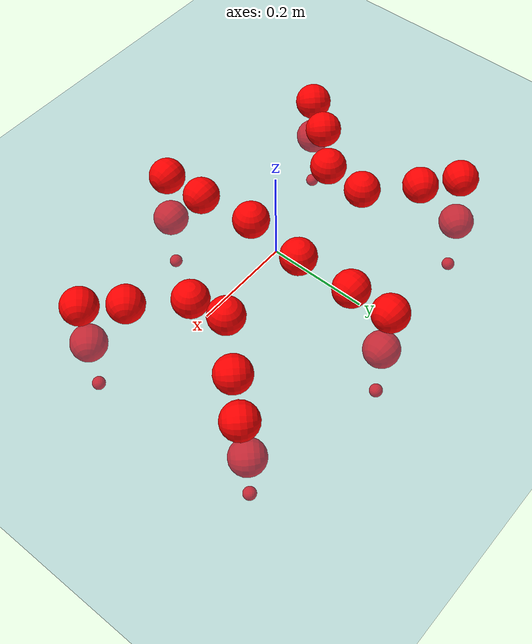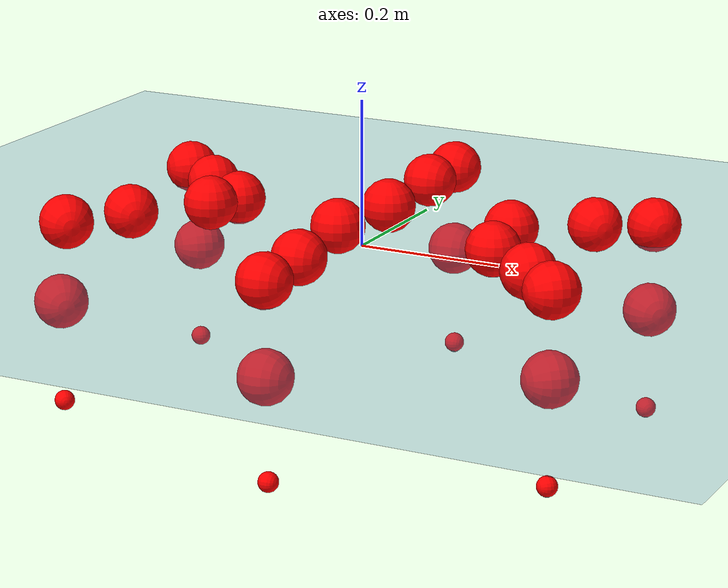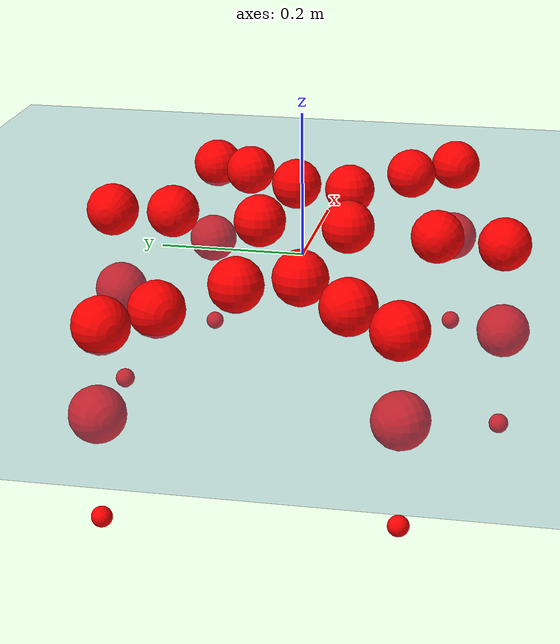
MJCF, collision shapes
<mujoco model="Golem">
  <compiler angle="radian" assetdir="assets" balanceinertia="true" inertiafromgeom="false"/>

  <option timestep="0.005" density="1.2" viscosity="2e-05"/>

  <size nkey="1"/>

  <visual>
    <quality shadowsize="8192"/>
    <map shadowclip="0.5"/>
  </visual>

  <default>
    <default class="/">
      <joint armature="0.01" damping="0.01" frictionloss="0.01"/>
      <geom contype="0" conaffinity="0" group="1" solref="-1000 -80"/>
      <site size="0.01 0.005 0.005" group="5"/>
      <general forcelimited="true" biastype="affine" gainprm="25" biasprm="0 -25 -0.5"/>
      <default class="visual">
        <geom type="mesh" group="2"/>
      </default>
      <default class="collision">
        <geom group="3"/>
      </default>
      <default class="foot">
        <geom size="0.01 0 0" condim="6" group="4" priority="1" solimp="0.015 1 0.01"/>
      </default>
      <default class="reward_collision_sphere">
        <geom group="5" rgba="1 0 0 1"/>
      </default>
    </default>
  </default>

  <asset>
    <texture type="skybox" colorspace="auto" name="//unnamed_texture_0" builtin="gradient" rgb1="0.95 0.95 0.95" rgb2="0.95 0.95 0.95" width="100" height="600"/>
    <texture type="2d" colorspace="auto" name="texplane" builtin="checker" rgb1="0.345 0.575 0.748" rgb2="0.345 0.575 0.748" markrgb="1 1 1" width="512" height="512"/>
    <material name="MatPlane" class="/" texture="texplane" texuniform="true" texrepeat="2 2" specular="0.9"/>
    <mesh name="body" class="/" file="body.stl" scale="0.001 0.001 0.001"/>
    <mesh name="coxa" class="/" file="coxa.stl" scale="0.001 0.001 0.001"/>
    <mesh name="femur" class="/" file="femur.stl" scale="0.001 0.001 0.001"/>
    <mesh name="tibia" class="/" file="tibia.stl" scale="0.001 0.001 0.001"/>
    <mesh name="tarsus" class="/" file="tarsus.stl" scale="0.001 0.001 0.001"/>
  </asset>

  <worldbody>
    <geom name="floor" class="/" size="100 100 0.125" type="plane" group="0" material="MatPlane"/>
    <light name="toplight_shadow" class="/" pos="0 0 5" dir="0.0990148 0.0990148 -0.990148" type="directional" ambient="0.04 0.04 0.04" diffuse="0.55 0.55 0.55" specular="0.12 0.12 0.12"/>
    <light name="toplight_fill" class="/" pos="0 0 5" dir="0.0990148 0.0990148 -0.990148" type="directional" castshadow="false" ambient="0.04 0.04 0.04" diffuse="0.3 0.3 0.3" specular="0.08 0.08 0.08"/>
    <body name="trunk" pos="-0.00096562 0.00073315 0.000172764" quat="1 6.33489e-05 -2.80179e-05 -6.71539e-05">
      <inertial pos="-0.00627957 -0.000233395 -0.00534939" quat="0.99984 -0.0156323 0.00239196 -0.00833014" mass="2.46059" diaginertia="0.030486 0.00311184 0.000767372"/>
      <joint name="//unnamed_joint_0" type="free"/>
      <geom name="//unnamed_geom_1" class="/" pos="0 0 0.0399375" quat="1 0 0 0" type="mesh" rgba="0.9 0.9 0.9 1" mesh="body"/>
      <site name="imu" class="/" pos="0.17985 0.00531496 0.107191" size="0.0091736"/>
      <camera name="track" class="/" pos="0 -1.62395 0" quat="0.707107 0.707107 0 0" mode="trackcom"/>
      <camera name="ego_camera" class="/" pos="0.171091 0 0.0624023" quat="-0.5 -0.5 0.5 0.5"/>
      <body name="coxa_RR" pos="-0.237412 -0.0670457 0.0427654" quat="0.383067 -0.000224689 -0.000227377 -0.92372">
        <inertial pos="-0.000378502 0.00377818 -0.000212854" quat="0.99998 0.00119365 -0.0024173 -0.00570099" mass="0.158829" diaginertia="0.0413821 0.00385163 0.000964464"/>
        <joint name="coxa_joint_RR" class="/" pos="0 0 0" axis="0.0371232 0.0396817 -0.998523" range="-3.04068 3.14588" armature="0.00907543" damping="0.0216108" frictionloss="0.00890419"/>
        <geom name="//unnamed_geom_2" class="/" type="mesh" rgba="0.2 0.2 0.2 1" mesh="coxa"/>
        <geom name="//unnamed_geom_3" class="reward_collision_sphere" size="0.0366944" pos="-0.0394824 0 0"/>
        <body name="femur_RR" pos="0.0701157 -0.00341403 -0.00363454" quat="0.500255 -0.499998 0.501406 0.498336">
          <inertial pos="-0.000163504 0.00121026 0.00407196" quat="0.999958 0.00611603 0.00485737 0.00482641" mass="0.168201" diaginertia="0.0383651 0.00395523 0.000993147"/>
          <joint name="femur_joint_RR" class="/" pos="0 0 0" axis="-0.0254888 -0.0318101 -0.999169" range="-3.1453 3.11492" armature="0.00905243" damping="0.0144168" frictionloss="0.00800813"/>
          <geom name="//unnamed_geom_4" class="/" type="mesh" rgba="0.9 0.9 0.9 1" mesh="femur"/>
          <geom name="//unnamed_geom_5" class="reward_collision_sphere" size="0.0366944"/>
          <body name="tibia_RR" pos="0.00378567 -0.090516 0.0106604" quat="0.000329362 1 -6.94901e-05 -0.000328465">
            <inertial pos="-0.00203835 0.00957321 0.00180691" quat="0.998825 0.036273 0.0216037 0.0237835" mass="0.154364" diaginertia="0.0348903 0.00338836 0.000925657"/>
            <joint name="tibia_joint_RR" class="/" pos="0 0 0" axis="-0.0253578 -0.00552848 0.999663" stiffness="0.00154388" range="-3.24126 3.14382" armature="0.00814516" damping="0" frictionloss="0.00998543"/>
            <geom name="//unnamed_geom_6" class="/" type="mesh" rgba="0.2 0.2 0.2 1" mesh="tibia"/>
            <geom name="//unnamed_geom_7" class="reward_collision_sphere" size="0.0366944"/>
            <body name="tarsus_RR" pos="0.1115 0.00979365 0.00369293" quat="0.999998 0.00193202 0.000217399 5.95065e-05">
              <inertial pos="0.081341 -0.000690316 0.00530058" quat="0.509899 0.468378 0.524784 0.495205" mass="0.144496" diaginertia="0.0393757 0.00341322 0.00106207"/>
              <joint name="tarsus_joint_RR" class="/" pos="0 0 0" axis="-0.00180224 -0.0104389 0.999944" stiffness="0.00106846" range="-3.0383 3.12306" armature="0.00961439" damping="0.00971046" frictionloss="0.00615314"/>
              <geom name="//unnamed_geom_8" class="/" type="mesh" rgba="0.9 0.9 0.9 1" mesh="tarsus"/>
              <geom name="foot_1" class="foot" size="0.00801468" pos="0.147401 0 0" quat="0 -0.707107 0 0.707107"/>
              <geom name="//unnamed_geom_10" class="reward_collision_sphere" size="0.0366944"/>
              <geom name="//unnamed_geom_11" class="reward_collision_sphere" size="0.0137604" pos="0.141479 0 0"/>
              <site name="foot_1" class="foot" pos="0.147401 0 0" quat="0 -0.707107 0 0.707107" size="0.0091736"/>
            </body>
          </body>
        </body>
      </body>
      <body name="coxa_RM" pos="-0.0011488 -0.104559 0.0439335" quat="0.707665 0.0053499 -0.00107038 -0.706527">
        <inertial pos="-0.00548304 0.00183857 0.00762493" quat="0.999997 0.000400748 -0.00148995 0.00208275" mass="0.156066" diaginertia="0.0405302 0.00323257 0.000928219"/>
        <joint name="coxa_joint_RM" class="/" pos="0 0 0" axis="0.000232545 2.19103e-05 -1" range="-3.10177 3.11576" armature="0.00618188" damping="0.0333759" frictionloss="0.00842582"/>
        <geom name="//unnamed_geom_12" class="/" type="mesh" rgba="0.2 0.2 0.2 1" mesh="coxa"/>
        <geom name="//unnamed_geom_13" class="reward_collision_sphere" size="0.0366944" pos="-0.0394824 0 0"/>
        <body name="femur_RM" pos="0.0828664 0.00776058 -0.00843992" quat="0.499582 -0.499515 0.500475 0.500427">
          <inertial pos="-0.0094848 0.00425256 0.00141412" quat="0.999978 -0.00292109 -0.00404365 0.00435038" mass="0.171948" diaginertia="0.0482801 0.00393286 0.00117119"/>
          <joint name="femur_joint_RM" class="/" pos="0 0 0" axis="-0.0247821 -0.0155721 -0.999572" range="-3.15336 3.31351" armature="0.00906022" damping="0" frictionloss="0.0108397"/>
          <geom name="//unnamed_geom_14" class="/" type="mesh" rgba="0.9 0.9 0.9 1" mesh="femur"/>
          <geom name="//unnamed_geom_15" class="reward_collision_sphere" size="0.0366944"/>
          <body name="tibia_RM" pos="0.00447037 -0.0920925 0.000736957" quat="0.00178624 0.999997 -0.00127663 0.000510486">
            <inertial pos="0.00449096 -0.0107849 0.0018925" quat="0.999774 0.0173302 0.00566113 0.0109682" mass="0.163121" diaginertia="0.0417219 0.00375906 0.000969813"/>
            <joint name="tibia_joint_RM" class="/" pos="0 0 0" axis="2.74771e-05 -0.000750926 1" stiffness="0.00606115" range="-3.10188 3.04529" armature="0.00953831" damping="0" frictionloss="0.00913665"/>
            <geom name="//unnamed_geom_16" class="/" type="mesh" rgba="0.2 0.2 0.2 1" mesh="tibia"/>
            <geom name="//unnamed_geom_17" class="reward_collision_sphere" size="0.0366944"/>
            <body name="tarsus_RM" pos="0.126301 0.00277171 -0.000140865" quat="1 0.000166737 0.000548259 -0.000688876">
              <inertial pos="0.071231 -0.00133284 -0.000610758" quat="0.505025 0.498094 0.493072 0.503719" mass="0.133489" diaginertia="0.038691 0.00338952 0.000810522"/>
              <joint name="tarsus_joint_RM" class="/" pos="0 0 0" axis="0.00189169 -0.000912276 0.999998" range="-3.01309 3.28096" armature="0.0086321" damping="0.00836558" frictionloss="0.0120825"/>
              <geom name="//unnamed_geom_18" class="/" type="mesh" rgba="0.9 0.9 0.9 1" mesh="tarsus"/>
              <geom name="foot_2" class="foot" size="0.0075391" pos="0.147401 0 0" quat="0 -0.707107 0 0.707107"/>
              <geom name="//unnamed_geom_20" class="reward_collision_sphere" size="0.0366944"/>
              <geom name="//unnamed_geom_21" class="reward_collision_sphere" size="0.0137604" pos="0.141479 0 0"/>
              <site name="foot_2" class="foot" pos="0.147401 0 0" quat="0 -0.707107 0 0.707107" size="0.0091736"/>
            </body>
          </body>
        </body>
      </body>
      <body name="coxa_RF" pos="0.235289 -0.0603054 0.0322931" quat="0.923899 0.000227168 0.000732438 -0.382636">
        <inertial pos="-0.000110707 0.00899273 -0.00621671" quat="0.999054 -0.00191687 -0.0249899 -0.0355339" mass="0.179301" diaginertia="0.0432005 0.00379892 0.00101948"/>
        <joint name="coxa_joint_RF" class="/" pos="0 0 0" axis="-0.0174071 -0.0324306 -0.999322" stiffness="0.0102627" range="-3.32536 3.07056" armature="0.0125784" damping="0.0237239" frictionloss="0.00833499"/>
        <geom name="//unnamed_geom_22" class="/" type="mesh" rgba="0.2 0.2 0.2 1" mesh="coxa"/>
        <geom name="//unnamed_geom_23" class="reward_collision_sphere" size="0.0366944" pos="-0.0394824 0 0"/>
        <body name="femur_RF" pos="0.0776135 0.0032392 0.00425978" quat="0.500008 -0.499991 0.500009 0.499992">
          <inertial pos="0.00587269 -0.00883134 0.00210771" quat="0.999994 0.00328571 -0.000838348 0.00035681" mass="0.149904" diaginertia="0.035856 0.00315307 0.000839896"/>
          <joint name="femur_joint_RF" class="/" pos="0 0 0" axis="-0.00331722 0.00414164 -0.999986" range="-3.17349 3.19921" armature="0.00909665" damping="0.0072825" frictionloss="0.0105524"/>
          <geom name="//unnamed_geom_24" class="/" type="mesh" rgba="0.9 0.9 0.9 1" mesh="femur"/>
          <geom name="//unnamed_geom_25" class="reward_collision_sphere" size="0.0366944"/>
          <body name="tibia_RF" pos="-0.000811587 -0.0839077 -0.00260337" quat="-0.000228142 1 0.00014134 -0.000410991">
            <inertial pos="0.000682434 0.000319657 0.0102404" quat="0.999254 0.0303815 0.00903526 0.0220484" mass="0.159236" diaginertia="0.0399751 0.00394424 0.000876248"/>
            <joint name="tibia_joint_RF" class="/" pos="0 0 0" axis="-0.0105537 -3.24621e-05 0.999944" range="-3.17558 3.06567" armature="0.00993299" damping="0.0153153" frictionloss="0.00739954"/>
            <geom name="//unnamed_geom_26" class="/" type="mesh" rgba="0.2 0.2 0.2 1" mesh="tibia"/>
            <geom name="//unnamed_geom_27" class="reward_collision_sphere" size="0.0366944"/>
            <body name="tarsus_RF" pos="0.115566 -0.000897927 -0.000877265" quat="0.999995 -0.0019187 -0.00178943 0.0016471">
              <inertial pos="0.0817232 0.000336174 -0.00101761" quat="0.494464 0.49653 0.505926 0.502994" mass="0.1442" diaginertia="0.0377223 0.00368632 0.00100611"/>
              <joint name="tarsus_joint_RF" class="/" pos="0 0 0" axis="0.00302901 -0.0204527 0.999786" stiffness="0.0244711" range="-3.27119 3.13549" armature="0.00976733" damping="0.0409343" frictionloss="0.00949048"/>
              <geom name="//unnamed_geom_28" class="/" type="mesh" rgba="0.9 0.9 0.9 1" mesh="tarsus"/>
              <geom name="foot_3" class="foot" size="0.00874108" pos="0.147401 0 0" quat="0 -0.707107 0 0.707107"/>
              <geom name="//unnamed_geom_30" class="reward_collision_sphere" size="0.0366944"/>
              <geom name="//unnamed_geom_31" class="reward_collision_sphere" size="0.0137604" pos="0.141479 0 0"/>
              <site name="foot_3" class="foot" pos="0.147401 0 0" quat="0 -0.707107 0 0.707107" size="0.0091736"/>
            </body>
          </body>
        </body>
      </body>
      <body name="coxa_LR" pos="-0.240643 0.0719261 0.0288247" quat="0.382397 0.000376242 1.24157e-05 0.923998">
        <inertial pos="0.00583388 0.00647837 -0.000446832" quat="0.999517 -0.0284144 -0.011092 -0.00588253" mass="0.167364" diaginertia="0.0367419 0.00406183 0.00114739"/>
        <joint name="coxa_joint_LR" class="/" pos="0 0 0" axis="0.00288118 -0.00181905 -0.999994" range="-3.06016 3.08469" armature="0.00822952" damping="0.0037499" frictionloss="0.010036"/>
        <geom name="//unnamed_geom_32" class="/" type="mesh" rgba="0.2 0.2 0.2 1" mesh="coxa"/>
        <geom name="//unnamed_geom_33" class="reward_collision_sphere" size="0.0366944" pos="-0.0394824 0 0"/>
        <body name="femur_LR" pos="0.079585 0.00515155 -0.00563883" quat="0.500058 -0.500059 0.49997 0.499914">
          <inertial pos="0.00120611 0.010971 0.000422198" quat="0.999997 -0.00129878 -0.0016554 0.00150648" mass="0.151871" diaginertia="0.0443962 0.00331054 0.0010712"/>
          <joint name="femur_joint_LR" class="/" pos="0 0 0" axis="0.00215528 -0.000364201 0.999998" range="-3.30463 3.12564" armature="0.00857886" damping="0.0627486" frictionloss="0.00934963"/>
          <geom name="//unnamed_geom_34" class="/" type="mesh" rgba="0.9 0.9 0.9 1" mesh="femur"/>
          <geom name="//unnamed_geom_35" class="reward_collision_sphere" size="0.0366944"/>
          <body name="tibia_LR" pos="-0.000384045 -0.0835578 0.0103394" quat="0.000450601 0.999998 -0.000987183 0.00154121">
            <inertial pos="-0.00407458 0.00636283 0.00426611" quat="0.999251 -0.0237356 -0.029224 -0.00890341" mass="0.157182" diaginertia="0.0429581 0.0037246 0.000947197"/>
            <joint name="tibia_joint_LR" class="/" pos="0 0 0" axis="0.00409351 0.00378591 -0.999984" stiffness="0.0104583" range="-3.21383 2.96945" armature="0.00861527" damping="0.0245523" frictionloss="0.0089329"/>
            <geom name="//unnamed_geom_36" class="/" type="mesh" rgba="0.2 0.2 0.2 1" mesh="tibia"/>
            <geom name="//unnamed_geom_37" class="reward_collision_sphere" size="0.0366944"/>
            <body name="tarsus_LR" pos="0.120417 0.00411553 0.0104268" quat="0.999996 0.00274135 -0.000646735 0.000681218">
              <inertial pos="0.077473 0.00954932 0.00828382" quat="0.499056 0.492532 0.507379 0.500921" mass="0.160492" diaginertia="0.0390019 0.00373917 0.00105899"/>
              <joint name="tarsus_joint_LR" class="/" pos="0 0 0" axis="-0.037974 -0.0160639 -0.99915" stiffness="0.0417824" range="-3.09229 3.22358" armature="0.0117616" damping="0.0417422" frictionloss="0.0111197"/>
              <geom name="//unnamed_geom_38" class="/" type="mesh" rgba="0.9 0.9 0.9 1" mesh="tarsus"/>
              <geom name="foot_4" class="foot" size="0.00549456" pos="0.147401 0 0" quat="0.707107 0 -0.707107 0"/>
              <geom name="//unnamed_geom_40" class="reward_collision_sphere" size="0.0366944"/>
              <geom name="//unnamed_geom_41" class="reward_collision_sphere" size="0.0137604" pos="0.141479 0 0"/>
              <site name="foot_4" class="foot" pos="0.147401 0 0" quat="0.707107 0 -0.707107 0" size="0.0091736"/>
            </body>
          </body>
        </body>
      </body>
      <body name="coxa_LM" pos="0.0102237 0.100687 0.0416148" quat="0.707089 8.92106e-05 7.00363e-06 0.707124">
        <inertial pos="0.00172142 0.005697 -0.00152095" quat="0.999231 0.0223951 -0.0261386 -0.0187917" mass="0.14657" diaginertia="0.0341038 0.00310505 0.000830888"/>
        <joint name="coxa_joint_LM" class="/" pos="0 0 0" axis="0.00961731 0.0513771 -0.998633" stiffness="0.0076854" range="-3.09802 3.13926" armature="0.00874086" damping="0.00701374" frictionloss="0.00714948"/>
        <geom name="//unnamed_geom_42" class="/" type="mesh" rgba="0.2 0.2 0.2 1" mesh="coxa"/>
        <geom name="//unnamed_geom_43" class="reward_collision_sphere" size="0.0366944" pos="-0.0394824 0 0"/>
        <body name="femur_LM" pos="0.0851494 -0.00172735 0.00581163" quat="0.499983 -0.500106 0.500043 0.499868">
          <inertial pos="-0.00565737 -0.0012972 0.000227449" quat="0.999523 -0.0047981 0.0298977 -0.00608169" mass="0.138025" diaginertia="0.0402211 0.00286221 0.00088149"/>
          <joint name="femur_joint_LM" class="/" pos="0 0 0" axis="-0.00111111 -0.000856586 0.999999" range="-3.15092 3.17396" armature="0.00833501" damping="0" frictionloss="0.0116315"/>
          <geom name="//unnamed_geom_44" class="/" type="mesh" rgba="0.9 0.9 0.9 1" mesh="femur"/>
          <geom name="//unnamed_geom_45" class="reward_collision_sphere" size="0.0366944"/>
          <body name="tibia_LM" pos="0.00209808 -0.0870962 0.00213974" quat="0.00116218 0.999994 0.000225874 -0.003378">
            <inertial pos="-0.0046984 0.00263647 0.00766277" quat="0.999143 -0.0306211 0.0180924 -0.0211735" mass="0.148772" diaginertia="0.0380333 0.00304523 0.000939112"/>
            <joint name="tibia_joint_LM" class="/" pos="0 0 0" axis="0.0179243 -0.00348058 -0.999833" stiffness="0.0434235" range="-3.15639 3.14377" armature="0.0087047" damping="0" frictionloss="0.0123027"/>
            <geom name="//unnamed_geom_46" class="/" type="mesh" rgba="0.2 0.2 0.2 1" mesh="tibia"/>
            <geom name="//unnamed_geom_47" class="reward_collision_sphere" size="0.0366944"/>
            <body name="tarsus_LM" pos="0.117971 -0.00729247 0.0021164" quat="0.999992 0.00105021 -0.00341056 0.00154992">
              <inertial pos="0.0774167 0.0014182 -0.00356633" quat="0.5097 0.47661 0.482997 0.528926" mass="0.136444" diaginertia="0.0335975 0.00353828 0.000923986"/>
              <joint name="tarsus_joint_LM" class="/" pos="0 0 0" axis="-0.0489418 0.0143211 -0.998699" range="-3.10625 3.10595" armature="0.00837483" damping="0.0369745" frictionloss="0.00541119"/>
              <geom name="//unnamed_geom_48" class="/" type="mesh" rgba="0.9 0.9 0.9 1" mesh="tarsus"/>
              <geom name="foot_5" class="foot" size="0.00893611" pos="0.147401 0 0" quat="0.707107 0 -0.707107 0"/>
              <geom name="//unnamed_geom_50" class="reward_collision_sphere" size="0.0366944"/>
              <geom name="//unnamed_geom_51" class="reward_collision_sphere" size="0.0137604" pos="0.141479 0 0"/>
              <site name="foot_5" class="foot" pos="0.147401 0 0" quat="0.707107 0 -0.707107 0" size="0.0091736"/>
            </body>
          </body>
        </body>
      </body>
      <body name="coxa_LF" pos="0.225623 0.0739776 0.0393971" quat="0.92383 -0.000107573 7.58561e-05 0.382802">
        <inertial pos="0.00180281 0.000845351 -0.00766344" quat="0.999545 0.0186647 0.0174586 -0.0160108" mass="0.15944" diaginertia="0.0425793 0.00307589 0.000980979"/>
        <joint name="coxa_joint_LF" class="/" pos="0 0 0" axis="-0.033513 -0.00796849 -0.999407" range="-3.15732 3.13238" armature="0.0125763" damping="0.00498927" frictionloss="0.00421599"/>
        <geom name="//unnamed_geom_52" class="/" type="mesh" rgba="0.2 0.2 0.2 1" mesh="coxa"/>
        <geom name="//unnamed_geom_53" class="reward_collision_sphere" size="0.0366944" pos="-0.0394824 0 0"/>
        <body name="femur_LF" pos="0.0814919 0.00378345 -0.0074661" quat="0.499852 -0.499746 0.500407 0.499994">
          <inertial pos="0.0104599 -0.00207549 -0.0109127" quat="0.99996 0.00437304 0.00781986 0.00024435" mass="0.163826" diaginertia="0.0361055 0.00367765 0.000980316"/>
          <joint name="femur_joint_LF" class="/" pos="0 0 0" axis="-0.0018178 -0.00769982 0.999969" range="-3.10019 3.10205" armature="0.00701514" damping="0" frictionloss="0.00914987"/>
          <geom name="//unnamed_geom_54" class="/" type="mesh" rgba="0.9 0.9 0.9 1" mesh="femur"/>
          <geom name="//unnamed_geom_55" class="reward_collision_sphere" size="0.0366944"/>
          <body name="tibia_LF" pos="0.00945965 -0.0885413 0.00506409" quat="0.000195224 0.999998 0.00178767 0.00121076">
            <inertial pos="0.00255674 0.0102797 -0.00379872" quat="0.999997 0.00031604 -0.00177986 -0.00146094" mass="0.171537" diaginertia="0.0504729 0.00398752 0.00106075"/>
            <joint name="tibia_joint_LF" class="/" pos="0 0 0" axis="-0.0130867 0.00189332 -0.999913" stiffness="0.00273238" range="-3.17143 3.16541" armature="0.00643559" damping="0.0285731" frictionloss="0.0099991"/>
            <geom name="//unnamed_geom_56" class="/" type="mesh" rgba="0.2 0.2 0.2 1" mesh="tibia"/>
            <geom name="//unnamed_geom_57" class="reward_collision_sphere" size="0.0366944"/>
            <body name="tarsus_LF" pos="0.123223 0.00249888 -0.00963101" quat="1 -0.000300175 0.000259479 0.000179374">
              <inertial pos="0.0802207 -0.00373465 -0.00111449" quat="0.509802 0.481736 0.511376 0.496514" mass="0.188319" diaginertia="0.0436009 0.00432744 0.00103715"/>
              <joint name="tarsus_joint_LF" class="/" pos="0 0 0" axis="0.00148113 -0.010739 -0.999941" range="-3.13465 3.13276" armature="0.00584744" damping="0.0436532" frictionloss="0.013763"/>
              <geom name="//unnamed_geom_58" class="/" type="mesh" rgba="0.9 0.9 0.9 1" mesh="tarsus"/>
              <geom name="foot_6" class="foot" size="0.00862555" pos="0.147401 0 0" quat="0.707107 0 -0.707107 0"/>
              <geom name="//unnamed_geom_60" class="reward_collision_sphere" size="0.0366944"/>
              <geom name="//unnamed_geom_61" class="reward_collision_sphere" size="0.0137604" pos="0.141479 0 0"/>
              <site name="foot_6" class="foot" pos="0.147401 0 0" quat="0.707107 0 -0.707107 0" size="0.0091736"/>
            </body>
          </body>
        </body>
      </body>
    </body>
  </worldbody>

  <contact>
    <pair class="/" geom1="floor" geom2="foot_1" name="//unnamed_contact_0"/>
    <pair class="/" geom1="floor" geom2="foot_2" name="//unnamed_contact_1"/>
    <pair class="/" geom1="floor" geom2="foot_3" name="//unnamed_contact_2"/>
    <pair class="/" geom1="floor" geom2="foot_4" name="//unnamed_contact_3"/>
    <pair class="/" geom1="floor" geom2="foot_5" name="//unnamed_contact_4"/>
    <pair class="/" geom1="floor" geom2="foot_6" name="//unnamed_contact_5"/>
  </contact>

  <actuator>
    <general name="coxa_joint_RR" class="/" joint="coxa_joint_RR" forcerange="-7.07181 7.07181" gainprm="18.3923" biasprm="0 -18.3923 -0.468556"/>
    <general name="femur_joint_RR" class="/" joint="femur_joint_RR" forcerange="-6.28355 6.28355" gainprm="18.3923" biasprm="0 -18.3923 -0.468556"/>
    <general name="tibia_joint_RR" class="/" joint="tibia_joint_RR" forcerange="-6.86709 6.86709" gainprm="18.3923" biasprm="0 -18.3923 -0.468556"/>
    <general name="tarsus_joint_RR" class="/" joint="tarsus_joint_RR" forcerange="-4.70836 4.70836" gainprm="18.3923" biasprm="0 -18.3923 -0.468556"/>
    <general name="coxa_joint_RM" class="/" joint="coxa_joint_RM" forcerange="-7.09381 7.09381" gainprm="18.3923" biasprm="0 -18.3923 -0.468556"/>
    <general name="femur_joint_RM" class="/" joint="femur_joint_RM" forcerange="-6.71561 6.71561" gainprm="18.3923" biasprm="0 -18.3923 -0.468556"/>
    <general name="tibia_joint_RM" class="/" joint="tibia_joint_RM" forcerange="-6.97674 6.97674" gainprm="18.3923" biasprm="0 -18.3923 -0.468556"/>
    <general name="tarsus_joint_RM" class="/" joint="tarsus_joint_RM" forcerange="-4.29198 4.29198" gainprm="18.3923" biasprm="0 -18.3923 -0.468556"/>
    <general name="coxa_joint_RF" class="/" joint="coxa_joint_RF" forcerange="-5.78889 5.78889" gainprm="18.3923" biasprm="0 -18.3923 -0.468556"/>
    <general name="femur_joint_RF" class="/" joint="femur_joint_RF" forcerange="-8.95956 8.95956" gainprm="18.3923" biasprm="0 -18.3923 -0.468556"/>
    <general name="tibia_joint_RF" class="/" joint="tibia_joint_RF" forcerange="-5.48685 5.48685" gainprm="18.3923" biasprm="0 -18.3923 -0.468556"/>
    <general name="tarsus_joint_RF" class="/" joint="tarsus_joint_RF" forcerange="-8.04843 8.04843" gainprm="18.3923" biasprm="0 -18.3923 -0.468556"/>
    <general name="coxa_joint_LR" class="/" joint="coxa_joint_LR" forcerange="-7.75962 7.75962" gainprm="18.3923" biasprm="0 -18.3923 -0.468556"/>
    <general name="femur_joint_LR" class="/" joint="femur_joint_LR" forcerange="-7.17738 7.17738" gainprm="18.3923" biasprm="0 -18.3923 -0.468556"/>
    <general name="tibia_joint_LR" class="/" joint="tibia_joint_LR" forcerange="-6.54867 6.54867" gainprm="18.3923" biasprm="0 -18.3923 -0.468556"/>
    <general name="tarsus_joint_LR" class="/" joint="tarsus_joint_LR" forcerange="-7.77751 7.77751" gainprm="18.3923" biasprm="0 -18.3923 -0.468556"/>
    <general name="coxa_joint_LM" class="/" joint="coxa_joint_LM" forcerange="-6.50411 6.50411" gainprm="18.3923" biasprm="0 -18.3923 -0.468556"/>
    <general name="femur_joint_LM" class="/" joint="femur_joint_LM" forcerange="-7.90195 7.90195" gainprm="18.3923" biasprm="0 -18.3923 -0.468556"/>
    <general name="tibia_joint_LM" class="/" joint="tibia_joint_LM" forcerange="-7.15238 7.15238" gainprm="18.3923" biasprm="0 -18.3923 -0.468556"/>
    <general name="tarsus_joint_LM" class="/" joint="tarsus_joint_LM" forcerange="-6.58208 6.58208" gainprm="18.3923" biasprm="0 -18.3923 -0.468556"/>
    <general name="coxa_joint_LF" class="/" joint="coxa_joint_LF" forcerange="-8.64377 8.64377" gainprm="18.3923" biasprm="0 -18.3923 -0.468556"/>
    <general name="femur_joint_LF" class="/" joint="femur_joint_LF" forcerange="-7.76563 7.76563" gainprm="18.3923" biasprm="0 -18.3923 -0.468556"/>
    <general name="tibia_joint_LF" class="/" joint="tibia_joint_LF" forcerange="-5.64563 5.64563" gainprm="18.3923" biasprm="0 -18.3923 -0.468556"/>
    <general name="tarsus_joint_LF" class="/" joint="tarsus_joint_LF" forcerange="-7.06641 7.06641" gainprm="18.3923" biasprm="0 -18.3923 -0.468556"/>
  </actuator>

  <sensor>
    <gyro site="imu" name="imu_angular_velocity"/>
    <velocimeter site="imu" name="imu_linear_velocity"/>
    <framelinvel objtype="site" objname="foot_1" name="foot_1_global_linear_velocity"/>
    <framelinvel objtype="site" objname="foot_2" name="foot_2_global_linear_velocity"/>
    <framelinvel objtype="site" objname="foot_3" name="foot_3_global_linear_velocity"/>
    <framelinvel objtype="site" objname="foot_4" name="foot_4_global_linear_velocity"/>
    <framelinvel objtype="site" objname="foot_5" name="foot_5_global_linear_velocity"/>
    <framelinvel objtype="site" objname="foot_6" name="foot_6_global_linear_velocity"/>
  </sensor>

  <keyframe>
    <key name="home" qpos="0 0 0.1457 1 0 0 0 0 0 0 0 0 0 0 0 0 0 0 0 0 0 0 0 0 0 0 0 0 0 0 0"/>
  </keyframe>
</mujoco>
